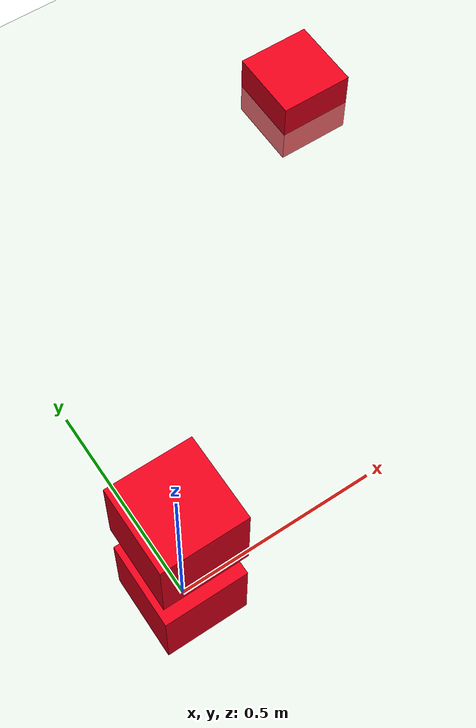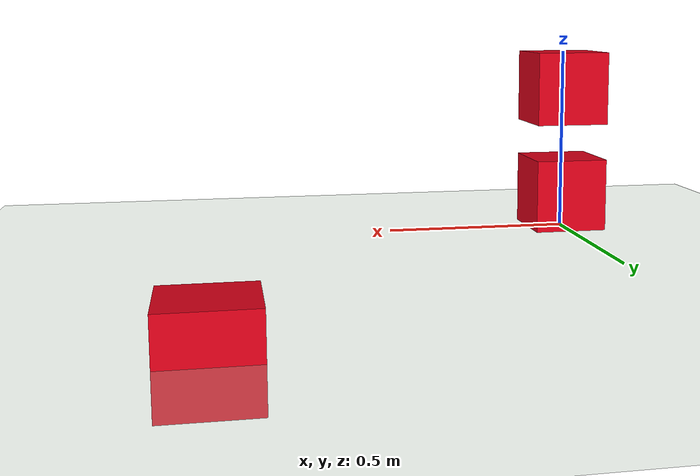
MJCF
<mujoco model="box_example">
    <compiler angle ="radian"/>

    <!-- 텍스처와 재질 정의 -->
    <asset>
        <texture builtin="gradient" height="100" rgb1="1 1 1" rgb2="0 0 0" type="skybox" width="100"/>
        <texture builtin="flat" height="1278" mark="cross" markrgb="1 1 1" name="texgeom" random="0.01" rgb1="0.8 0.6 0.4" rgb2="0.8 0.6 0.4" type="cube" width="127"/>
        <texture builtin="checker" height="100" name="texplane" rgb1="0 0 0" rgb2="0.8 0.8 0.8" type="2d" width="100"/>
        <material name="MatPlane" reflectance="0.5" shininess="1" specular="1" texrepeat="60 60" texture="texplane"/>
        <material name="geom" texture="texgeom" texuniform="true"/>
    </asset>
    <option gravity="0 0 -9.8"/>

    <worldbody>
        <!-- 조명 pos 위치 dir 방향 diffuse 확산광(빛이 고르게 퍼지도록 ) specular 반사광 ambient 주변(주변이 밝아지도록)-->
        <light cutoff="100" diffuse="1 1 1" dir="-0 0 -1.3" directional="true" exponent="1" pos="0 0 1.3" specular=".1 .1 .1"/>
        <geom conaffinity="1" condim="3" material="MatPlane" name="floor" pos="0 0 0" rgba="0.8 0.9 0.8 1" size="40 40 40" type="plane"/>
        <!-- if you want to move the box, then the box should need joint-->
        <body name = "box2" pos="1 1 0" euler = "0 0 0">
            <geom type="box" size=".1 .1 .1" rgba = "0.9 0 0.1 1"/>
        </body>

        <!-- but only the header have the free joint then byproducts move along the header-->
        <body pos="0 0 0.1" euler = "0 0 0">
            <joint name = "joint1"  type="slide" axis="1 0 0" />
            <geom name = "box1" type="box" size=".1 .1 .1" rgba = "0.9 0 0.1 1"/>
            <inertial pos="0 0 0.3" mass="1" diaginertia="0.01 0.01 0.01"/>

            <body name="agent" pos="0 0 .3" euler = "0 0 0">
                <joint name = "joint2" type="slide" axis="0 1 0" />

                <geom type="box" size=".1 .1 .1" rgba = "0.9 0 0.1 1"/>
                <inertial pos="0 0 0.3" mass="1" diaginertia="0.01 0.01 0.01"/>

            </body>
        </body>
    </worldbody>

    <actuator>
        <motor joint="joint1" />
        <motor joint="joint2" />
    </actuator>
</mujoco>
